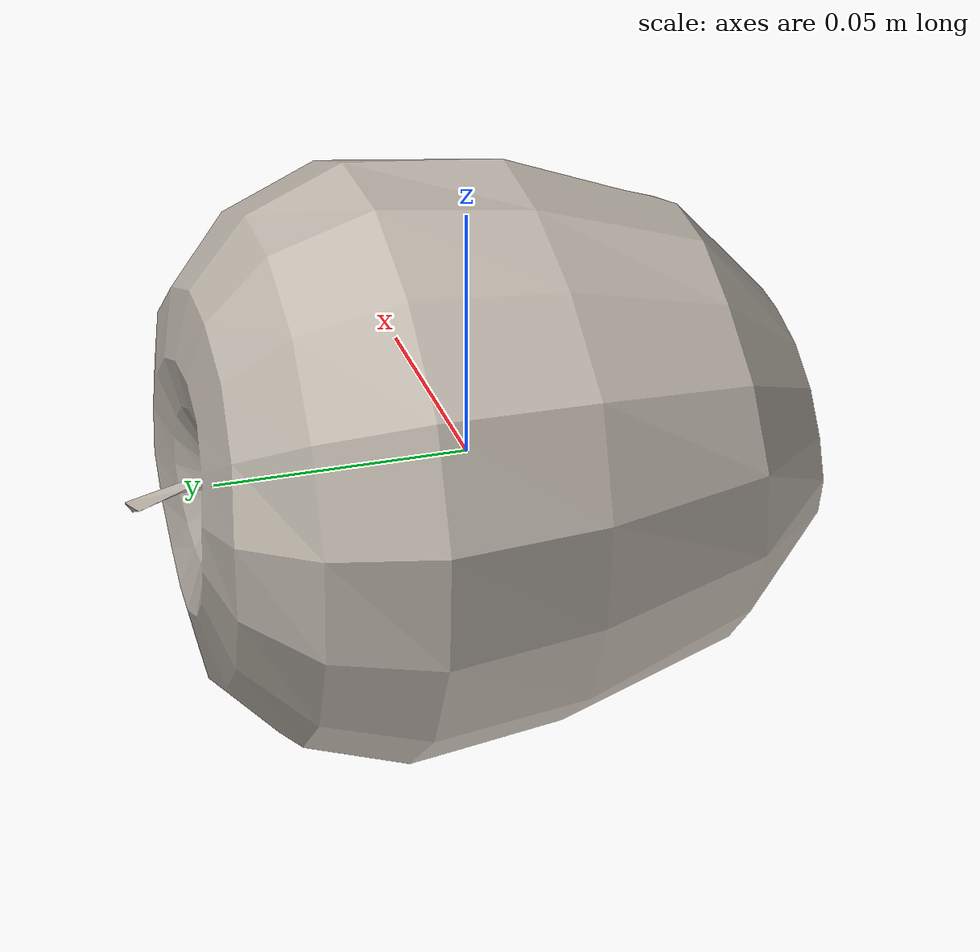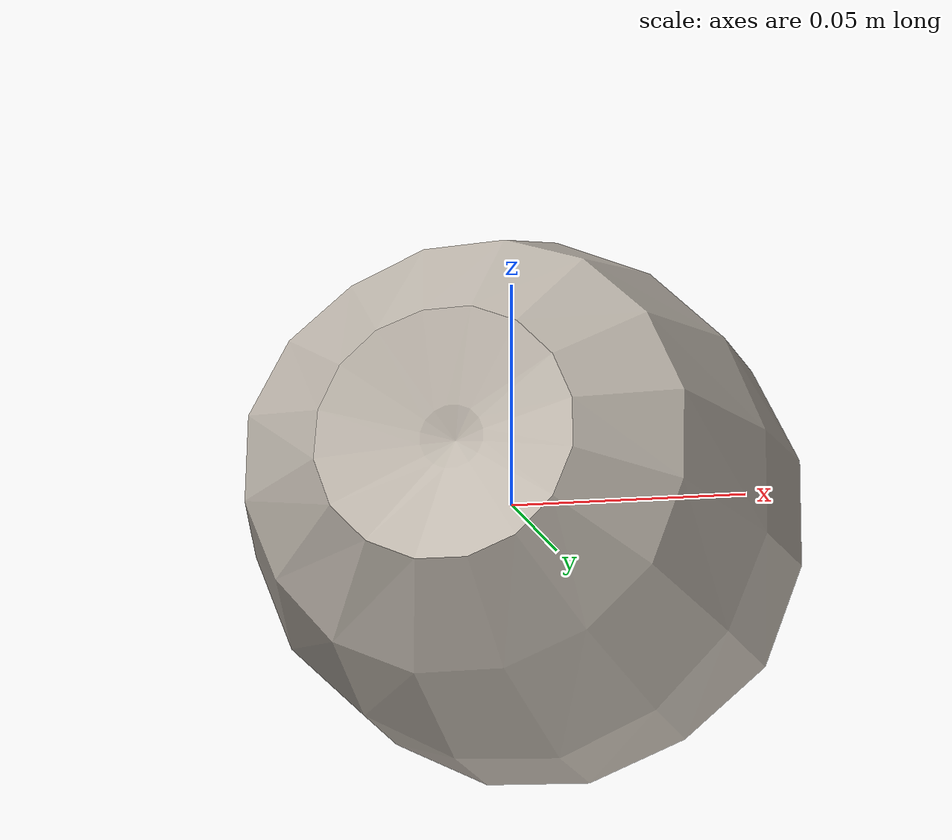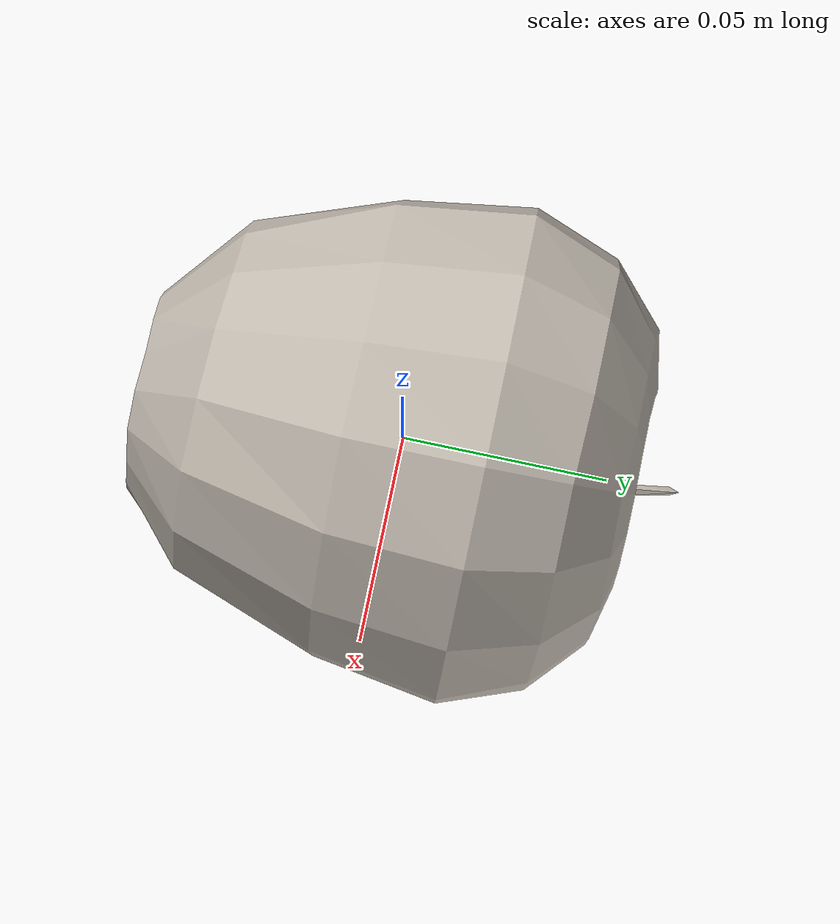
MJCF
<mujoco model="Apple_4">
  <compiler autolimits="true" boundmass="0.01" angle="radian"/>
  <default>
    <default class="/">
      <default class="__VISUAL_MJT__">
        <geom contype="0" conaffinity="0" group="0"/>
      </default>
      <default class="__STRUCTURAL_MJT__">
        <geom contype="8" conaffinity="15" group="4" friction="0.90000000000000002 0.90000000000000002 0.001" solref="0.025000000000000001 1" solimp="0.998 0.998 0.001"/>
      </default>
      <default class="__DYNAMIC_MJT__">
        <geom contype="1" conaffinity="15" group="4" friction="0.90000000000000002 0.90000000000000002 0.001" solref="0.025000000000000001 1" solimp="0.998 0.998 0.001"/>
      </default>
    </default>
  </default>
  <asset>
    <texture name="Apple1_Mat4" type="2d" file="Apple1_AlbedoTransparency4.png"/>
    <material name="material_Apple1_Mat4" class="/" texture="Apple1_Mat4" specular="0.5" shininess="0.5" rgba="1 1 1 1"/>
    <mesh name="Apple_4_apple_a4" class="/" file="Apple_4_apple_a4/Apple_4_apple_a4.obj" scale="1 1 1"/>
  </asset>
  <worldbody>
    <body name="Apple_4">
      <joint name="Apple_4_free" class="/" type="free" pos="0 0 0" axis="0 0 1" stiffness="0" range="0 0" armature="0" damping="0.10000000000000001" frictionloss="0"/>
      <body name="Apple_4_apple_a4" pos="-0 0.0028 0" quat="1 0 0 0">
        <geom name="Apple_4_apple_a4" class="__VISUAL_MJT__" type="mesh" material="material_Apple1_Mat4" shellinertia="false" mesh="Apple_4_apple_a4"/>
        <geom name="Apple_4_PrimitiveCollider_0" class="__DYNAMIC_MJT__" type="capsule" size="0.060363583266735077 0.0075453966856002808" rgba="0 1 0 1" pos="-0 -0.00279999990016222 0" quat="0.70710678118654757 0.70710678118654746 0 0"/>
      </body>
    </body>
  </worldbody>
</mujoco>
